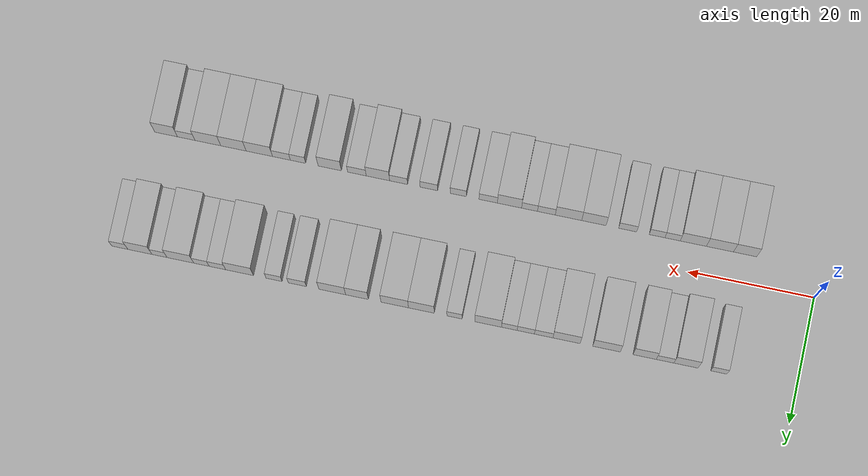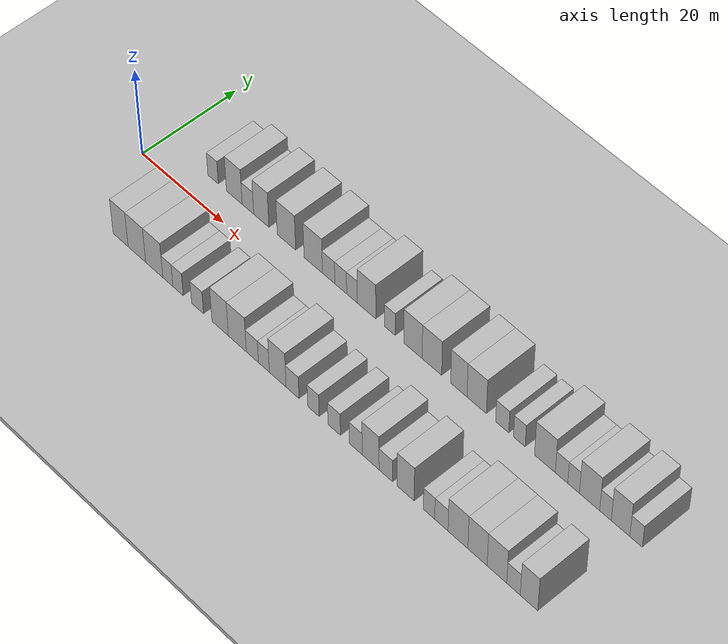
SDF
<sdf version="1.6">
 <world name="default">
  <include><name>ground_plane_1</name><uri>model://HANNAS_ground_plane</uri></include>
  <include>
   <name>ground_plane_2</name>
   <uri>model://HANNAS_ground_plane</uri>
   <pose>100 0 0  0 0 0</pose>
  </include>
  <model name="building_1">
   <static>1</static>
   <pose>12.2852 9.5000 0 0.000000 0.000000 1.570796</pose>
   <link name="link">
    <pose>0 0 3.00 0 0 0</pose>
    <collision name="collision"><geometry><box><size>10.0000 2.5705 6.0000</size></box></geometry></collision>
    <visual name="visual">
     <cast_shadows>0</cast_shadows>
     <geometry><box><size>10.0000 2.5705 6.0000</size></box></geometry>
     <material>
      <script>
       <uri>model://HANNAS_wall/materials/scripts</uri>
       <uri>model://HANNAS_wall/materials/textures</uri>
       <name>vrc/HANNAS_wall</name>
      </script>
     </material>
    </visual>
   </link>
  </model>
  <model name="building_2">
   <static>1</static>
   <pose>17.4919 9.5000 0 0.000000 0.000000 1.570796</pose>
   <link name="link">
    <pose>0 0 4.50 0 0 0</pose>
    <collision name="collision"><geometry><box><size>10.0000 3.8429 9.0000</size></box></geometry></collision>
    <visual name="visual">
     <cast_shadows>0</cast_shadows>
     <geometry><box><size>10.0000 3.8429 9.0000</size></box></geometry>
     <material>
      <script>
       <uri>model://HANNAS_wall/materials/scripts</uri>
       <uri>model://HANNAS_wall/materials/textures</uri>
       <name>vrc/HANNAS_wall</name>
      </script>
     </material>
    </visual>
   </link>
  </model>
  <model name="building_3">
   <static>1</static>
   <pose>20.8117 9.5000 0 0.000000 0.000000 1.570796</pose>
   <link name="link">
    <pose>0 0 3.00 0 0 0</pose>
    <collision name="collision"><geometry><box><size>10.0000 2.7967 6.0000</size></box></geometry></collision>
    <visual name="visual">
     <cast_shadows>0</cast_shadows>
     <geometry><box><size>10.0000 2.7967 6.0000</size></box></geometry>
     <material>
      <script>
       <uri>model://HANNAS_wall/materials/scripts</uri>
       <uri>model://HANNAS_wall/materials/textures</uri>
       <name>vrc/HANNAS_wall</name>
      </script>
     </material>
    </visual>
   </link>
  </model>
  <model name="building_4">
   <static>1</static>
   <pose>24.0512 9.5000 0 0.000000 0.000000 1.570796</pose>
   <link name="link">
    <pose>0 0 4.50 0 0 0</pose>
    <collision name="collision"><geometry><box><size>10.0000 3.6823 9.0000</size></box></geometry></collision>
    <visual name="visual">
     <cast_shadows>0</cast_shadows>
     <geometry><box><size>10.0000 3.6823 9.0000</size></box></geometry>
     <material>
      <script>
       <uri>model://HANNAS_wall/materials/scripts</uri>
       <uri>model://HANNAS_wall/materials/textures</uri>
       <name>vrc/HANNAS_wall</name>
      </script>
     </material>
    </visual>
   </link>
  </model>
  <model name="building_5">
   <static>1</static>
   <pose>30.0848 9.5000 0 0.000000 0.000000 1.570796</pose>
   <link name="link">
    <pose>0 0 4.50 0 0 0</pose>
    <collision name="collision"><geometry><box><size>10.0000 4.3848 9.0000</size></box></geometry></collision>
    <visual name="visual">
     <cast_shadows>0</cast_shadows>
     <geometry><box><size>10.0000 4.3848 9.0000</size></box></geometry>
     <material>
      <script>
       <uri>model://HANNAS_wall/materials/scripts</uri>
       <uri>model://HANNAS_wall/materials/textures</uri>
       <name>vrc/HANNAS_wall</name>
      </script>
     </material>
    </visual>
   </link>
  </model>
  <model name="building_6">
   <static>1</static>
   <pose>36.4384 9.5000 0 0.000000 0.000000 1.570796</pose>
   <link name="link">
    <pose>0 0 4.50 0 0 0</pose>
    <collision name="collision"><geometry><box><size>10.0000 4.3224 9.0000</size></box></geometry></collision>
    <visual name="visual">
     <cast_shadows>0</cast_shadows>
     <geometry><box><size>10.0000 4.3224 9.0000</size></box></geometry>
     <material>
      <script>
       <uri>model://HANNAS_wall/materials/scripts</uri>
       <uri>model://HANNAS_wall/materials/textures</uri>
       <name>vrc/HANNAS_wall</name>
      </script>
     </material>
    </visual>
   </link>
  </model>
  <model name="building_7">
   <static>1</static>
   <pose>40.0626 9.5000 0 0.000000 0.000000 1.570796</pose>
   <link name="link">
    <pose>0 0 3.00 0 0 0</pose>
    <collision name="collision"><geometry><box><size>10.0000 2.9260 6.0000</size></box></geometry></collision>
    <visual name="visual">
     <cast_shadows>0</cast_shadows>
     <geometry><box><size>10.0000 2.9260 6.0000</size></box></geometry>
     <material>
      <script>
       <uri>model://HANNAS_wall/materials/scripts</uri>
       <uri>model://HANNAS_wall/materials/textures</uri>
       <name>vrc/HANNAS_wall</name>
      </script>
     </material>
    </visual>
   </link>
  </model>
  <model name="building_8">
   <static>1</static>
   <pose>42.9022 9.5000 0 0.000000 0.000000 1.570796</pose>
   <link name="link">
    <pose>0 0 3.00 0 0 0</pose>
    <collision name="collision"><geometry><box><size>10.0000 2.7533 6.0000</size></box></geometry></collision>
    <visual name="visual">
     <cast_shadows>0</cast_shadows>
     <geometry><box><size>10.0000 2.7533 6.0000</size></box></geometry>
     <material>
      <script>
       <uri>model://HANNAS_wall/materials/scripts</uri>
       <uri>model://HANNAS_wall/materials/textures</uri>
       <name>vrc/HANNAS_wall</name>
      </script>
     </material>
    </visual>
   </link>
  </model>
  <model name="building_9">
   <static>1</static>
   <pose>45.5193 9.5000 0 0.000000 0.000000 1.570796</pose>
   <link name="link">
    <pose>0 0 3.00 0 0 0</pose>
    <collision name="collision"><geometry><box><size>10.0000 2.4808 6.0000</size></box></geometry></collision>
    <visual name="visual">
     <cast_shadows>0</cast_shadows>
     <geometry><box><size>10.0000 2.4808 6.0000</size></box></geometry>
     <material>
      <script>
       <uri>model://HANNAS_wall/materials/scripts</uri>
       <uri>model://HANNAS_wall/materials/textures</uri>
       <name>vrc/HANNAS_wall</name>
      </script>
     </material>
    </visual>
   </link>
  </model>
  <model name="building_10">
   <static>1</static>
   <pose>48.8832 9.5000 0 0.000000 0.000000 1.570796</pose>
   <link name="link">
    <pose>0 0 4.50 0 0 0</pose>
    <collision name="collision"><geometry><box><size>10.0000 4.2470 9.0000</size></box></geometry></collision>
    <visual name="visual">
     <cast_shadows>0</cast_shadows>
     <geometry><box><size>10.0000 4.2470 9.0000</size></box></geometry>
     <material>
      <script>
       <uri>model://HANNAS_wall/materials/scripts</uri>
       <uri>model://HANNAS_wall/materials/textures</uri>
       <name>vrc/HANNAS_wall</name>
      </script>
     </material>
    </visual>
   </link>
  </model>
  <model name="building_11">
   <static>1</static>
   <pose>54.2244 9.5000 0 0.000000 0.000000 1.570796</pose>
   <link name="link">
    <pose>0 0 3.00 0 0 0</pose>
    <collision name="collision"><geometry><box><size>10.0000 2.4354 6.0000</size></box></geometry></collision>
    <visual name="visual">
     <cast_shadows>0</cast_shadows>
     <geometry><box><size>10.0000 2.4354 6.0000</size></box></geometry>
     <material>
      <script>
       <uri>model://HANNAS_wall/materials/scripts</uri>
       <uri>model://HANNAS_wall/materials/textures</uri>
       <name>vrc/HANNAS_wall</name>
      </script>
     </material>
    </visual>
   </link>
  </model>
  <model name="building_12">
   <static>1</static>
   <pose>59.4938 9.5000 0 0.000000 0.000000 1.570796</pose>
   <link name="link">
    <pose>0 0 4.50 0 0 0</pose>
    <collision name="collision"><geometry><box><size>10.0000 4.1035 9.0000</size></box></geometry></collision>
    <visual name="visual">
     <cast_shadows>0</cast_shadows>
     <geometry><box><size>10.0000 4.1035 9.0000</size></box></geometry>
     <material>
      <script>
       <uri>model://HANNAS_wall/materials/scripts</uri>
       <uri>model://HANNAS_wall/materials/textures</uri>
       <name>vrc/HANNAS_wall</name>
      </script>
     </material>
    </visual>
   </link>
  </model>
  <model name="building_13">
   <static>1</static>
   <pose>63.7356 9.5000 0 0.000000 0.000000 1.570796</pose>
   <link name="link">
    <pose>0 0 4.50 0 0 0</pose>
    <collision name="collision"><geometry><box><size>10.0000 4.3802 9.0000</size></box></geometry></collision>
    <visual name="visual">
     <cast_shadows>0</cast_shadows>
     <geometry><box><size>10.0000 4.3802 9.0000</size></box></geometry>
     <material>
      <script>
       <uri>model://HANNAS_wall/materials/scripts</uri>
       <uri>model://HANNAS_wall/materials/textures</uri>
       <name>vrc/HANNAS_wall</name>
      </script>
     </material>
    </visual>
   </link>
  </model>
  <model name="building_14">
   <static>1</static>
   <pose>69.7383 9.5000 0 0.000000 0.000000 1.570796</pose>
   <link name="link">
    <pose>0 0 4.50 0 0 0</pose>
    <collision name="collision"><geometry><box><size>10.0000 3.6252 9.0000</size></box></geometry></collision>
    <visual name="visual">
     <cast_shadows>0</cast_shadows>
     <geometry><box><size>10.0000 3.6252 9.0000</size></box></geometry>
     <material>
      <script>
       <uri>model://HANNAS_wall/materials/scripts</uri>
       <uri>model://HANNAS_wall/materials/textures</uri>
       <name>vrc/HANNAS_wall</name>
      </script>
     </material>
    </visual>
   </link>
  </model>
  <model name="building_15">
   <static>1</static>
   <pose>73.6824 9.5000 0 0.000000 0.000000 1.570796</pose>
   <link name="link">
    <pose>0 0 4.50 0 0 0</pose>
    <collision name="collision"><geometry><box><size>10.0000 4.2629 9.0000</size></box></geometry></collision>
    <visual name="visual">
     <cast_shadows>0</cast_shadows>
     <geometry><box><size>10.0000 4.2629 9.0000</size></box></geometry>
     <material>
      <script>
       <uri>model://HANNAS_wall/materials/scripts</uri>
       <uri>model://HANNAS_wall/materials/textures</uri>
       <name>vrc/HANNAS_wall</name>
      </script>
     </material>
    </visual>
   </link>
  </model>
  <model name="building_16">
   <static>1</static>
   <pose>79.2487 9.5000 0 0.000000 0.000000 1.570796</pose>
   <link name="link">
    <pose>0 0 3.00 0 0 0</pose>
    <collision name="collision"><geometry><box><size>10.0000 2.8696 6.0000</size></box></geometry></collision>
    <visual name="visual">
     <cast_shadows>0</cast_shadows>
     <geometry><box><size>10.0000 2.8696 6.0000</size></box></geometry>
     <material>
      <script>
       <uri>model://HANNAS_wall/materials/scripts</uri>
       <uri>model://HANNAS_wall/materials/textures</uri>
       <name>vrc/HANNAS_wall</name>
      </script>
     </material>
    </visual>
   </link>
  </model>
  <model name="building_17">
   <static>1</static>
   <pose>82.9593 9.5000 0 0.000000 0.000000 1.570796</pose>
   <link name="link">
    <pose>0 0 3.00 0 0 0</pose>
    <collision name="collision"><geometry><box><size>10.0000 2.5515 6.0000</size></box></geometry></collision>
    <visual name="visual">
     <cast_shadows>0</cast_shadows>
     <geometry><box><size>10.0000 2.5515 6.0000</size></box></geometry>
     <material>
      <script>
       <uri>model://HANNAS_wall/materials/scripts</uri>
       <uri>model://HANNAS_wall/materials/textures</uri>
       <name>vrc/HANNAS_wall</name>
      </script>
     </material>
    </visual>
   </link>
  </model>
  <model name="building_18">
   <static>1</static>
   <pose>88.4551 9.5000 0 0.000000 0.000000 1.570796</pose>
   <link name="link">
    <pose>0 0 4.50 0 0 0</pose>
    <collision name="collision"><geometry><box><size>10.0000 4.4401 9.0000</size></box></geometry></collision>
    <visual name="visual">
     <cast_shadows>0</cast_shadows>
     <geometry><box><size>10.0000 4.4401 9.0000</size></box></geometry>
     <material>
      <script>
       <uri>model://HANNAS_wall/materials/scripts</uri>
       <uri>model://HANNAS_wall/materials/textures</uri>
       <name>vrc/HANNAS_wall</name>
      </script>
     </material>
    </visual>
   </link>
  </model>
  <model name="building_19">
   <static>1</static>
   <pose>92.0016 9.5000 0 0.000000 0.000000 1.570796</pose>
   <link name="link">
    <pose>0 0 3.00 0 0 0</pose>
    <collision name="collision"><geometry><box><size>10.0000 2.6529 6.0000</size></box></geometry></collision>
    <visual name="visual">
     <cast_shadows>0</cast_shadows>
     <geometry><box><size>10.0000 2.6529 6.0000</size></box></geometry>
     <material>
      <script>
       <uri>model://HANNAS_wall/materials/scripts</uri>
       <uri>model://HANNAS_wall/materials/textures</uri>
       <name>vrc/HANNAS_wall</name>
      </script>
     </material>
    </visual>
   </link>
  </model>
  <model name="building_20">
   <static>1</static>
   <pose>94.5586 9.5000 0 0.000000 0.000000 1.570796</pose>
   <link name="link">
    <pose>0 0 3.00 0 0 0</pose>
    <collision name="collision"><geometry><box><size>10.0000 2.4611 6.0000</size></box></geometry></collision>
    <visual name="visual">
     <cast_shadows>0</cast_shadows>
     <geometry><box><size>10.0000 2.4611 6.0000</size></box></geometry>
     <material>
      <script>
       <uri>model://HANNAS_wall/materials/scripts</uri>
       <uri>model://HANNAS_wall/materials/textures</uri>
       <name>vrc/HANNAS_wall</name>
      </script>
     </material>
    </visual>
   </link>
  </model>
  <model name="building_21">
   <static>1</static>
   <pose>97.9158 9.5000 0 0.000000 0.000000 1.570796</pose>
   <link name="link">
    <pose>0 0 4.50 0 0 0</pose>
    <collision name="collision"><geometry><box><size>10.0000 4.2533 9.0000</size></box></geometry></collision>
    <visual name="visual">
     <cast_shadows>0</cast_shadows>
     <geometry><box><size>10.0000 4.2533 9.0000</size></box></geometry>
     <material>
      <script>
       <uri>model://HANNAS_wall/materials/scripts</uri>
       <uri>model://HANNAS_wall/materials/textures</uri>
       <name>vrc/HANNAS_wall</name>
      </script>
     </material>
    </visual>
   </link>
  </model>
  <model name="building_22">
   <static>1</static>
   <pose>101.2465 9.5000 0 0.000000 0.000000 1.570796</pose>
   <link name="link">
    <pose>0 0 3.00 0 0 0</pose>
    <collision name="collision"><geometry><box><size>10.0000 2.4080 6.0000</size></box></geometry></collision>
    <visual name="visual">
     <cast_shadows>0</cast_shadows>
     <geometry><box><size>10.0000 2.4080 6.0000</size></box></geometry>
     <material>
      <script>
       <uri>model://HANNAS_wall/materials/scripts</uri>
       <uri>model://HANNAS_wall/materials/textures</uri>
       <name>vrc/HANNAS_wall</name>
      </script>
     </material>
    </visual>
   </link>
  </model>
  <model name="building_23">
   <static>1</static>
   <pose>104.3787 9.5000 0 0.000000 0.000000 1.570796</pose>
   <link name="link">
    <pose>0 0 4.50 0 0 0</pose>
    <collision name="collision"><geometry><box><size>10.0000 3.8563 9.0000</size></box></geometry></collision>
    <visual name="visual">
     <cast_shadows>0</cast_shadows>
     <geometry><box><size>10.0000 3.8563 9.0000</size></box></geometry>
     <material>
      <script>
       <uri>model://HANNAS_wall/materials/scripts</uri>
       <uri>model://HANNAS_wall/materials/textures</uri>
       <name>vrc/HANNAS_wall</name>
      </script>
     </material>
    </visual>
   </link>
  </model>
  <model name="building_24">
   <static>1</static>
   <pose>107.5938 9.5000 0 0.000000 0.000000 1.570796</pose>
   <link name="link">
    <pose>0 0 3.00 0 0 0</pose>
    <collision name="collision"><geometry><box><size>10.0000 2.5739 6.0000</size></box></geometry></collision>
    <visual name="visual">
     <cast_shadows>0</cast_shadows>
     <geometry><box><size>10.0000 2.5739 6.0000</size></box></geometry>
     <material>
      <script>
       <uri>model://HANNAS_wall/materials/scripts</uri>
       <uri>model://HANNAS_wall/materials/textures</uri>
       <name>vrc/HANNAS_wall</name>
      </script>
     </material>
    </visual>
   </link>
  </model>
  <model name="building_49">
   <static>1</static>
   <pose>11.8530 -9.5000 0 0.000000 0.000000 1.570796</pose>
   <link name="link">
    <pose>0 0 4.50 0 0 0</pose>
    <collision name="collision"><geometry><box><size>10.0000 3.7061 9.0000</size></box></geometry></collision>
    <visual name="visual">
     <cast_shadows>0</cast_shadows>
     <geometry><box><size>10.0000 3.7061 9.0000</size></box></geometry>
     <material>
      <script>
       <uri>model://HANNAS_wall/materials/scripts</uri>
       <uri>model://HANNAS_wall/materials/textures</uri>
       <name>vrc/HANNAS_wall</name>
      </script>
     </material>
    </visual>
   </link>
  </model>
  <model name="building_50">
   <static>1</static>
   <pose>15.8662 -9.5000 0 0.000000 0.000000 1.570796</pose>
   <link name="link">
    <pose>0 0 4.50 0 0 0</pose>
    <collision name="collision"><geometry><box><size>10.0000 4.3202 9.0000</size></box></geometry></collision>
    <visual name="visual">
     <cast_shadows>0</cast_shadows>
     <geometry><box><size>10.0000 4.3202 9.0000</size></box></geometry>
     <material>
      <script>
       <uri>model://HANNAS_wall/materials/scripts</uri>
       <uri>model://HANNAS_wall/materials/textures</uri>
       <name>vrc/HANNAS_wall</name>
      </script>
     </material>
    </visual>
   </link>
  </model>
  <model name="building_51">
   <static>1</static>
   <pose>20.1174 -9.5000 0 0.000000 0.000000 1.570796</pose>
   <link name="link">
    <pose>0 0 4.50 0 0 0</pose>
    <collision name="collision"><geometry><box><size>10.0000 4.1823 9.0000</size></box></geometry></collision>
    <visual name="visual">
     <cast_shadows>0</cast_shadows>
     <geometry><box><size>10.0000 4.1823 9.0000</size></box></geometry>
     <material>
      <script>
       <uri>model://HANNAS_wall/materials/scripts</uri>
       <uri>model://HANNAS_wall/materials/textures</uri>
       <name>vrc/HANNAS_wall</name>
      </script>
     </material>
    </visual>
   </link>
  </model>
  <model name="building_52">
   <static>1</static>
   <pose>23.4271 -9.5000 0 0.000000 0.000000 1.570796</pose>
   <link name="link">
    <pose>0 0 3.00 0 0 0</pose>
    <collision name="collision"><geometry><box><size>10.0000 2.4371 6.0000</size></box></geometry></collision>
    <visual name="visual">
     <cast_shadows>0</cast_shadows>
     <geometry><box><size>10.0000 2.4371 6.0000</size></box></geometry>
     <material>
      <script>
       <uri>model://HANNAS_wall/materials/scripts</uri>
       <uri>model://HANNAS_wall/materials/textures</uri>
       <name>vrc/HANNAS_wall</name>
      </script>
     </material>
    </visual>
   </link>
  </model>
  <model name="building_53">
   <static>1</static>
   <pose>25.8898 -9.5000 0 0.000000 0.000000 1.570796</pose>
   <link name="link">
    <pose>0 0 3.00 0 0 0</pose>
    <collision name="collision"><geometry><box><size>10.0000 2.4884 6.0000</size></box></geometry></collision>
    <visual name="visual">
     <cast_shadows>0</cast_shadows>
     <geometry><box><size>10.0000 2.4884 6.0000</size></box></geometry>
     <material>
      <script>
       <uri>model://HANNAS_wall/materials/scripts</uri>
       <uri>model://HANNAS_wall/materials/textures</uri>
       <name>vrc/HANNAS_wall</name>
      </script>
     </material>
    </visual>
   </link>
  </model>
  <model name="building_54">
   <static>1</static>
   <pose>30.5703 -9.5000 0 0.000000 0.000000 1.570796</pose>
   <link name="link">
    <pose>0 0 3.00 0 0 0</pose>
    <collision name="collision"><geometry><box><size>10.0000 2.8725 6.0000</size></box></geometry></collision>
    <visual name="visual">
     <cast_shadows>0</cast_shadows>
     <geometry><box><size>10.0000 2.8725 6.0000</size></box></geometry>
     <material>
      <script>
       <uri>model://HANNAS_wall/materials/scripts</uri>
       <uri>model://HANNAS_wall/materials/textures</uri>
       <name>vrc/HANNAS_wall</name>
      </script>
     </material>
    </visual>
   </link>
  </model>
  <model name="building_55">
   <static>1</static>
   <pose>35.9514 -9.5000 0 0.000000 0.000000 1.570796</pose>
   <link name="link">
    <pose>0 0 4.50 0 0 0</pose>
    <collision name="collision"><geometry><box><size>10.0000 3.8898 9.0000</size></box></geometry></collision>
    <visual name="visual">
     <cast_shadows>0</cast_shadows>
     <geometry><box><size>10.0000 3.8898 9.0000</size></box></geometry>
     <material>
      <script>
       <uri>model://HANNAS_wall/materials/scripts</uri>
       <uri>model://HANNAS_wall/materials/textures</uri>
       <name>vrc/HANNAS_wall</name>
      </script>
     </material>
    </visual>
   </link>
  </model>
  <model name="building_56">
   <static>1</static>
   <pose>40.0018 -9.5000 0 0.000000 0.000000 1.570796</pose>
   <link name="link">
    <pose>0 0 4.50 0 0 0</pose>
    <collision name="collision"><geometry><box><size>10.0000 4.2110 9.0000</size></box></geometry></collision>
    <visual name="visual">
     <cast_shadows>0</cast_shadows>
     <geometry><box><size>10.0000 4.2110 9.0000</size></box></geometry>
     <material>
      <script>
       <uri>model://HANNAS_wall/materials/scripts</uri>
       <uri>model://HANNAS_wall/materials/textures</uri>
       <name>vrc/HANNAS_wall</name>
      </script>
     </material>
    </visual>
   </link>
  </model>
  <model name="building_57">
   <static>1</static>
   <pose>43.5340 -9.5000 0 0.000000 0.000000 1.570796</pose>
   <link name="link">
    <pose>0 0 3.00 0 0 0</pose>
    <collision name="collision"><geometry><box><size>10.0000 2.8536 6.0000</size></box></geometry></collision>
    <visual name="visual">
     <cast_shadows>0</cast_shadows>
     <geometry><box><size>10.0000 2.8536 6.0000</size></box></geometry>
     <material>
      <script>
       <uri>model://HANNAS_wall/materials/scripts</uri>
       <uri>model://HANNAS_wall/materials/textures</uri>
       <name>vrc/HANNAS_wall</name>
      </script>
     </material>
    </visual>
   </link>
  </model>
  <model name="building_58">
   <static>1</static>
   <pose>46.2227 -9.5000 0 0.000000 0.000000 1.570796</pose>
   <link name="link">
    <pose>0 0 3.00 0 0 0</pose>
    <collision name="collision"><geometry><box><size>10.0000 2.5236 6.0000</size></box></geometry></collision>
    <visual name="visual">
     <cast_shadows>0</cast_shadows>
     <geometry><box><size>10.0000 2.5236 6.0000</size></box></geometry>
     <material>
      <script>
       <uri>model://HANNAS_wall/materials/scripts</uri>
       <uri>model://HANNAS_wall/materials/textures</uri>
       <name>vrc/HANNAS_wall</name>
      </script>
     </material>
    </visual>
   </link>
  </model>
  <model name="building_59">
   <static>1</static>
   <pose>49.4183 -9.5000 0 0.000000 0.000000 1.570796</pose>
   <link name="link">
    <pose>0 0 4.50 0 0 0</pose>
    <collision name="collision"><geometry><box><size>10.0000 3.8677 9.0000</size></box></geometry></collision>
    <visual name="visual">
     <cast_shadows>0</cast_shadows>
     <geometry><box><size>10.0000 3.8677 9.0000</size></box></geometry>
     <material>
      <script>
       <uri>model://HANNAS_wall/materials/scripts</uri>
       <uri>model://HANNAS_wall/materials/textures</uri>
       <name>vrc/HANNAS_wall</name>
      </script>
     </material>
    </visual>
   </link>
  </model>
  <model name="building_60">
   <static>1</static>
   <pose>52.8337 -9.5000 0 0.000000 0.000000 1.570796</pose>
   <link name="link">
    <pose>0 0 3.00 0 0 0</pose>
    <collision name="collision"><geometry><box><size>10.0000 2.9631 6.0000</size></box></geometry></collision>
    <visual name="visual">
     <cast_shadows>0</cast_shadows>
     <geometry><box><size>10.0000 2.9631 6.0000</size></box></geometry>
     <material>
      <script>
       <uri>model://HANNAS_wall/materials/scripts</uri>
       <uri>model://HANNAS_wall/materials/textures</uri>
       <name>vrc/HANNAS_wall</name>
      </script>
     </material>
    </visual>
   </link>
  </model>
  <model name="building_61">
   <static>1</static>
   <pose>57.6155 -9.5000 0 0.000000 0.000000 1.570796</pose>
   <link name="link">
    <pose>0 0 3.00 0 0 0</pose>
    <collision name="collision"><geometry><box><size>10.0000 2.6006 6.0000</size></box></geometry></collision>
    <visual name="visual">
     <cast_shadows>0</cast_shadows>
     <geometry><box><size>10.0000 2.6006 6.0000</size></box></geometry>
     <material>
      <script>
       <uri>model://HANNAS_wall/materials/scripts</uri>
       <uri>model://HANNAS_wall/materials/textures</uri>
       <name>vrc/HANNAS_wall</name>
      </script>
     </material>
    </visual>
   </link>
  </model>
  <model name="building_62">
   <static>1</static>
   <pose>62.3199 -9.5000 0 0.000000 0.000000 1.570796</pose>
   <link name="link">
    <pose>0 0 3.00 0 0 0</pose>
    <collision name="collision"><geometry><box><size>10.0000 2.8082 6.0000</size></box></geometry></collision>
    <visual name="visual">
     <cast_shadows>0</cast_shadows>
     <geometry><box><size>10.0000 2.8082 6.0000</size></box></geometry>
     <material>
      <script>
       <uri>model://HANNAS_wall/materials/scripts</uri>
       <uri>model://HANNAS_wall/materials/textures</uri>
       <name>vrc/HANNAS_wall</name>
      </script>
     </material>
    </visual>
   </link>
  </model>
  <model name="building_63">
   <static>1</static>
   <pose>67.1581 -9.5000 0 0.000000 0.000000 1.570796</pose>
   <link name="link">
    <pose>0 0 3.00 0 0 0</pose>
    <collision name="collision"><geometry><box><size>10.0000 2.8682 6.0000</size></box></geometry></collision>
    <visual name="visual">
     <cast_shadows>0</cast_shadows>
     <geometry><box><size>10.0000 2.8682 6.0000</size></box></geometry>
     <material>
      <script>
       <uri>model://HANNAS_wall/materials/scripts</uri>
       <uri>model://HANNAS_wall/materials/textures</uri>
       <name>vrc/HANNAS_wall</name>
      </script>
     </material>
    </visual>
   </link>
  </model>
  <model name="building_64">
   <static>1</static>
   <pose>70.4661 -9.5000 0 0.000000 0.000000 1.570796</pose>
   <link name="link">
    <pose>0 0 4.50 0 0 0</pose>
    <collision name="collision"><geometry><box><size>10.0000 3.7478 9.0000</size></box></geometry></collision>
    <visual name="visual">
     <cast_shadows>0</cast_shadows>
     <geometry><box><size>10.0000 3.7478 9.0000</size></box></geometry>
     <material>
      <script>
       <uri>model://HANNAS_wall/materials/scripts</uri>
       <uri>model://HANNAS_wall/materials/textures</uri>
       <name>vrc/HANNAS_wall</name>
      </script>
     </material>
    </visual>
   </link>
  </model>
  <model name="building_65">
   <static>1</static>
   <pose>73.8275 -9.5000 0 0.000000 0.000000 1.570796</pose>
   <link name="link">
    <pose>0 0 3.00 0 0 0</pose>
    <collision name="collision"><geometry><box><size>10.0000 2.9749 6.0000</size></box></geometry></collision>
    <visual name="visual">
     <cast_shadows>0</cast_shadows>
     <geometry><box><size>10.0000 2.9749 6.0000</size></box></geometry>
     <material>
      <script>
       <uri>model://HANNAS_wall/materials/scripts</uri>
       <uri>model://HANNAS_wall/materials/textures</uri>
       <name>vrc/HANNAS_wall</name>
      </script>
     </material>
    </visual>
   </link>
  </model>
  <model name="building_66">
   <static>1</static>
   <pose>78.1787 -9.5000 0 0.000000 0.000000 1.570796</pose>
   <link name="link">
    <pose>0 0 4.50 0 0 0</pose>
    <collision name="collision"><geometry><box><size>10.0000 3.7275 9.0000</size></box></geometry></collision>
    <visual name="visual">
     <cast_shadows>0</cast_shadows>
     <geometry><box><size>10.0000 3.7275 9.0000</size></box></geometry>
     <material>
      <script>
       <uri>model://HANNAS_wall/materials/scripts</uri>
       <uri>model://HANNAS_wall/materials/textures</uri>
       <name>vrc/HANNAS_wall</name>
      </script>
     </material>
    </visual>
   </link>
  </model>
  <model name="building_67">
   <static>1</static>
   <pose>83.2695 -9.5000 0 0.000000 0.000000 1.570796</pose>
   <link name="link">
    <pose>0 0 3.00 0 0 0</pose>
    <collision name="collision"><geometry><box><size>10.0000 2.4541 6.0000</size></box></geometry></collision>
    <visual name="visual">
     <cast_shadows>0</cast_shadows>
     <geometry><box><size>10.0000 2.4541 6.0000</size></box></geometry>
     <material>
      <script>
       <uri>model://HANNAS_wall/materials/scripts</uri>
       <uri>model://HANNAS_wall/materials/textures</uri>
       <name>vrc/HANNAS_wall</name>
      </script>
     </material>
    </visual>
   </link>
  </model>
  <model name="building_68">
   <static>1</static>
   <pose>85.9287 -9.5000 0 0.000000 0.000000 1.570796</pose>
   <link name="link">
    <pose>0 0 3.00 0 0 0</pose>
    <collision name="collision"><geometry><box><size>10.0000 2.8643 6.0000</size></box></geometry></collision>
    <visual name="visual">
     <cast_shadows>0</cast_shadows>
     <geometry><box><size>10.0000 2.8643 6.0000</size></box></geometry>
     <material>
      <script>
       <uri>model://HANNAS_wall/materials/scripts</uri>
       <uri>model://HANNAS_wall/materials/textures</uri>
       <name>vrc/HANNAS_wall</name>
      </script>
     </material>
    </visual>
   </link>
  </model>
  <model name="building_69">
   <static>1</static>
   <pose>89.4830 -9.5000 0 0.000000 0.000000 1.570796</pose>
   <link name="link">
    <pose>0 0 4.50 0 0 0</pose>
    <collision name="collision"><geometry><box><size>10.0000 4.2442 9.0000</size></box></geometry></collision>
    <visual name="visual">
     <cast_shadows>0</cast_shadows>
     <geometry><box><size>10.0000 4.2442 9.0000</size></box></geometry>
     <material>
      <script>
       <uri>model://HANNAS_wall/materials/scripts</uri>
       <uri>model://HANNAS_wall/materials/textures</uri>
       <name>vrc/HANNAS_wall</name>
      </script>
     </material>
    </visual>
   </link>
  </model>
  <model name="building_70">
   <static>1</static>
   <pose>93.6423 -9.5000 0 0.000000 0.000000 1.570796</pose>
   <link name="link">
    <pose>0 0 4.50 0 0 0</pose>
    <collision name="collision"><geometry><box><size>10.0000 4.0745 9.0000</size></box></geometry></collision>
    <visual name="visual">
     <cast_shadows>0</cast_shadows>
     <geometry><box><size>10.0000 4.0745 9.0000</size></box></geometry>
     <material>
      <script>
       <uri>model://HANNAS_wall/materials/scripts</uri>
       <uri>model://HANNAS_wall/materials/textures</uri>
       <name>vrc/HANNAS_wall</name>
      </script>
     </material>
    </visual>
   </link>
  </model>
  <model name="building_71">
   <static>1</static>
   <pose>97.7479 -9.5000 0 0.000000 0.000000 1.570796</pose>
   <link name="link">
    <pose>0 0 4.50 0 0 0</pose>
    <collision name="collision"><geometry><box><size>10.0000 4.1367 9.0000</size></box></geometry></collision>
    <visual name="visual">
     <cast_shadows>0</cast_shadows>
     <geometry><box><size>10.0000 4.1367 9.0000</size></box></geometry>
     <material>
      <script>
       <uri>model://HANNAS_wall/materials/scripts</uri>
       <uri>model://HANNAS_wall/materials/textures</uri>
       <name>vrc/HANNAS_wall</name>
      </script>
     </material>
    </visual>
   </link>
  </model>
  <model name="building_72">
   <static>1</static>
   <pose>101.2212 -9.5000 0 0.000000 0.000000 1.570796</pose>
   <link name="link">
    <pose>0 0 3.00 0 0 0</pose>
    <collision name="collision"><geometry><box><size>10.0000 2.8098 6.0000</size></box></geometry></collision>
    <visual name="visual">
     <cast_shadows>0</cast_shadows>
     <geometry><box><size>10.0000 2.8098 6.0000</size></box></geometry>
     <material>
      <script>
       <uri>model://HANNAS_wall/materials/scripts</uri>
       <uri>model://HANNAS_wall/materials/textures</uri>
       <name>vrc/HANNAS_wall</name>
      </script>
     </material>
    </visual>
   </link>
  </model>
  <model name="building_73">
   <static>1</static>
   <pose>104.4474 -9.5000 0 0.000000 0.000000 1.570796</pose>
   <link name="link">
    <pose>0 0 4.50 0 0 0</pose>
    <collision name="collision"><geometry><box><size>10.0000 3.6427 9.0000</size></box></geometry></collision>
    <visual name="visual">
     <cast_shadows>0</cast_shadows>
     <geometry><box><size>10.0000 3.6427 9.0000</size></box></geometry>
     <material>
      <script>
       <uri>model://HANNAS_wall/materials/scripts</uri>
       <uri>model://HANNAS_wall/materials/textures</uri>
       <name>vrc/HANNAS_wall</name>
      </script>
     </material>
    </visual>
   </link>
  </model>
 </world>
</sdf>
